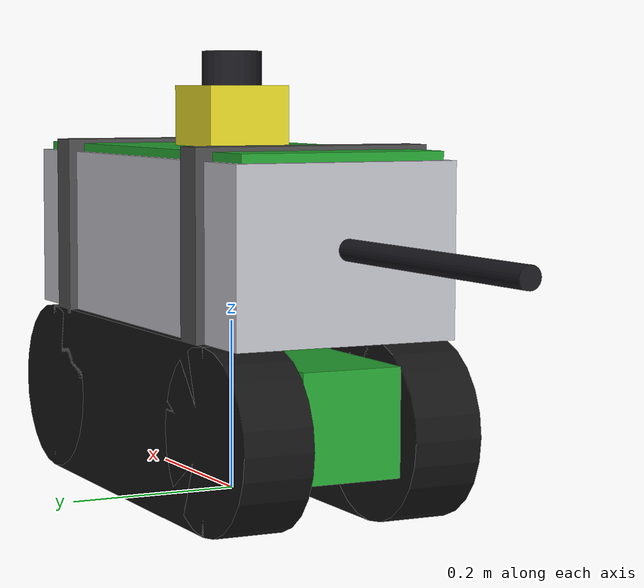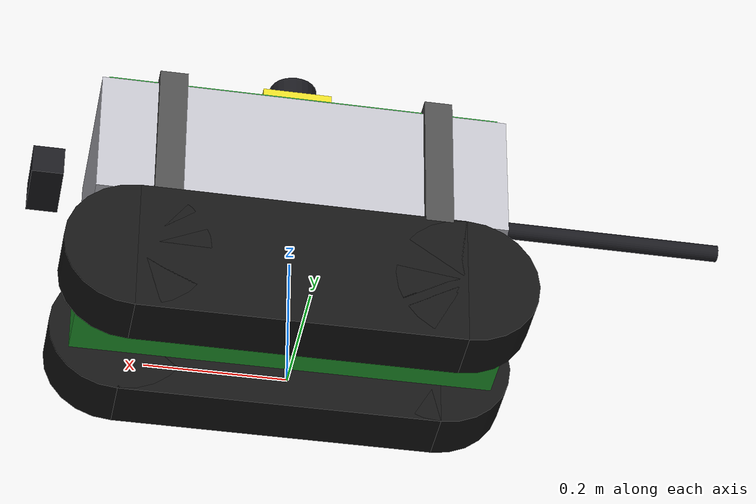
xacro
<?xml version="1.0"?>
<robot name="agos" xmlns:xacro="http://www.ros.org/wiki/xacro">

  <xacro:property name="chassis_length" value="0.6604"/>
  <xacro:property name="chassis_width"  value="0.2794"/>
  <xacro:property name="chassis_height" value="0.4064"/>
  <xacro:property name="chassis_mass"   value="42.0"/>

  <xacro:property name="track_radius"     value="0.1016"/>
  <xacro:property name="track_width"      value="0.08"/>
  <xacro:property name="wheel_mass"       value="1.2"/>
  <xacro:property name="track_separation" value="${chassis_width - track_width}"/>
  <xacro:property name="wheel_x_offset"   value="${chassis_length/2 - track_radius}"/>
  <xacro:property name="track_mu"         value="0.4"/>

  <!-- Body above the tracks, measured from the track top -->
  <xacro:property name="body_height"   value="${chassis_height/2}"/>
  <xacro:property name="lidar_mount_h" value="0.07"/>
  <xacro:property name="whip_length"   value="0.35"/>

  <xacro:include filename="$(find agos_sim)/urdf/agos_materials.xacro"/>
  <xacro:include filename="$(find agos_sim)/urdf/agos_tracks.xacro"/>
  <xacro:include filename="$(find agos_sim)/urdf/agos_sensors.xacro"/>

  <!-- ===================== base_footprint -> base_link -> chassis_link ===================== -->
  <link name="base_footprint"/>

  <joint name="base_footprint_joint" type="fixed">
    <parent link="base_footprint"/>
    <child link="base_link"/>
    <origin xyz="0 0 ${track_radius}" rpy="0 0 0"/>
  </joint>

  <link name="base_link"/>

  <!-- chassis_link origin = envelope center (ground + chassis_height/2 = track top) -->
  <joint name="base_link_to_chassis" type="fixed">
    <parent link="base_link"/>
    <child link="chassis_link"/>
    <origin xyz="0 0 ${chassis_height/2 - track_radius}" rpy="0 0 0"/>
  </joint>

  <link name="chassis_link">

    <!-- Green belly pan, between the tracks -->
    <visual>
      <origin xyz="0 0 ${0.12 - chassis_height/2}" rpy="0 0 0"/>
      <geometry>
        <box size="${chassis_length - 0.06} ${track_separation - track_width - 0.004} 0.12"/>
      </geometry>
      <material name="agos_green_body"/>
    </visual>

    <!-- Silver main body enclosure -->
    <visual>
      <origin xyz="0 0 ${(body_height - 0.01)/2}" rpy="0 0 0"/>
      <geometry>
        <box size="${chassis_length - 0.08} ${chassis_width - 0.02} ${body_height - 0.01}"/>
      </geometry>
      <material name="agos_silver_enclosure"/>
    </visual>

    <!-- Green top lid plate -->
    <visual>
      <origin xyz="0 0 ${body_height - 0.005}" rpy="0 0 0"/>
      <geometry>
        <box size="${chassis_length - 0.10} ${chassis_width - 0.04} 0.01"/>
      </geometry>
      <material name="agos_green_body"/>
    </visual>

    <!-- Front roll-cage arch -->
    <visual>
      <origin xyz="0.19 0 ${body_height/2}" rpy="0 0 0"/>
      <geometry>
        <box size="0.04 ${chassis_width} ${body_height + 0.01}"/>
      </geometry>
      <material name="agos_dark_grey_frame"/>
    </visual>

    <!-- Rear roll-cage arch -->
    <visual>
      <origin xyz="-0.19 0 ${body_height/2}" rpy="0 0 0"/>
      <geometry>
        <box size="0.04 ${chassis_width} ${body_height + 0.01}"/>
      </geometry>
      <material name="agos_dark_grey_frame"/>
    </visual>

    <!-- Rear whip pole / antenna (visual only) -->
    <visual>
      <origin xyz="${-chassis_length/2 - whip_length/2 + 0.05} 0 ${body_height/2}" rpy="0 ${pi/2} 0"/>
      <geometry>
        <cylinder radius="0.012" length="${whip_length}"/>
      </geometry>
      <material name="agos_sensor_dark"/>
    </visual>

    <!-- Yellow LiDAR pedestal (the LiDAR itself is in agos_sensors.xacro) -->
    <visual>
      <origin xyz="0 0 ${body_height + lidar_mount_h/2}" rpy="0 0 0"/>
      <geometry>
        <box size="0.10 0.10 ${lidar_mount_h}"/>
      </geometry>
      <material name="agos_lidar_yellow"/>
    </visual>

    <!-- Collision: upper body only. Tracks/wheels carry ground contact. -->
    <collision>
      <origin xyz="0 0 ${body_height/2}" rpy="0 0 0"/>
      <geometry>
        <box size="${chassis_length - 0.08} ${chassis_width} ${body_height}"/>
      </geometry>
    </collision>

    <inertial>
      <mass value="${chassis_mass}"/>
      <origin xyz="0 0 0" rpy="0 0 0"/>
      <inertia
        ixx="${(chassis_mass/12.0)*(chassis_width*chassis_width + chassis_height*chassis_height)}" ixy="0.0" ixz="0.0"
        iyy="${(chassis_mass/12.0)*(chassis_length*chassis_length + chassis_height*chassis_height)}" iyz="0.0"
        izz="${(chassis_mass/12.0)*(chassis_length*chassis_length + chassis_width*chassis_width)}"/>
    </inertial>
  </link>

  <!-- ===================== Tracks ===================== -->
  <xacro:agos_track side="left"  y_sign="1"/>
  <xacro:agos_track side="right" y_sign="-1"/>

  <!-- ===================== Sensors ===================== -->
  <xacro:agos_camera/>
  <xacro:agos_lidar/>
  <xacro:agos_imu/>

</robot>

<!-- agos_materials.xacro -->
<robot xmlns:xacro="http://www.ros.org/wiki/xacro">

  <material name="agos_chassis_grey">
    <color rgba="0.35 0.35 0.38 1.0"/>
  </material>

  <material name="agos_track_black">
    <color rgba="0.08 0.08 0.08 1.0"/>
  </material>

  <material name="agos_sensor_dark">
    <color rgba="0.10 0.10 0.12 1.0"/>
  </material>

</robot>

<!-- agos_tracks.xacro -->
<robot xmlns:xacro="http://www.ros.org/wiki/xacro">

  <!-- One driven road wheel. Collision = full track_radius cylinder (this is
       what touches the ground). Visual is slightly smaller so it hides inside
       the static belt. -->
  <xacro:macro name="agos_wheel" params="side y_sign pos x">
    <link name="${side}_wheel_${pos}">
      <visual>
        <origin xyz="0 0 0" rpy="${pi/2} 0 0"/>
        <geometry>
          <cylinder radius="${track_radius - 0.012}" length="${track_width - 0.01}"/>
        </geometry>
        <material name="agos_track_black"/>
      </visual>
      <collision>
        <origin xyz="0 0 0" rpy="${pi/2} 0 0"/>
        <geometry>
          <cylinder radius="${track_radius}" length="${track_width - 0.01}"/>
        </geometry>
      </collision>
      <inertial>
        <mass value="${wheel_mass}"/>
        <origin xyz="0 0 0" rpy="0 0 0"/>
        <inertia
          ixx="${(wheel_mass/12.0)*(3*track_radius*track_radius + track_width*track_width)}" ixy="0.0" ixz="0.0"
          iyy="${(wheel_mass/2.0)*track_radius*track_radius}" iyz="0.0"
          izz="${(wheel_mass/12.0)*(3*track_radius*track_radius + track_width*track_width)}"/>
      </inertial>
    </link>

    <joint name="${side}_wheel_${pos}_joint" type="continuous">
      <parent link="base_link"/>
      <child link="${side}_wheel_${pos}"/>
      <origin xyz="${x} ${y_sign * track_separation/2} 0" rpy="0 0 0"/>
      <axis xyz="0 1 0"/>
      <dynamics damping="0.1" friction="0.05"/>
    </joint>

    <gazebo reference="${side}_wheel_${pos}">
      <mu1>${track_mu}</mu1>
      <mu2>${track_mu}</mu2>
    </gazebo>
  </xacro:macro>

  <!-- One side: static belt (visual only, never rotates) + 3 driven wheels -->
  <xacro:macro name="agos_track" params="side y_sign">

    <link name="${side}_track_frame">
      <!-- center straight section -->
      <visual>
        <origin xyz="0 0 0" rpy="0 0 0"/>
        <geometry>
          <box size="${2*wheel_x_offset} ${track_width} ${2*track_radius}"/>
        </geometry>
        <material name="agos_track_black"/>
      </visual>
      <!-- front rounded end -->
      <visual>
        <origin xyz="${wheel_x_offset} 0 0" rpy="${pi/2} 0 0"/>
        <geometry>
          <cylinder radius="${track_radius}" length="${track_width}"/>
        </geometry>
        <material name="agos_track_black"/>
      </visual>
      <!-- rear rounded end -->
      <visual>
        <origin xyz="${-wheel_x_offset} 0 0" rpy="${pi/2} 0 0"/>
        <geometry>
          <cylinder radius="${track_radius}" length="${track_width}"/>
        </geometry>
        <material name="agos_track_black"/>
      </visual>
    </link>

    <joint name="${side}_track_frame_joint" type="fixed">
      <parent link="base_link"/>
      <child link="${side}_track_frame"/>
      <origin xyz="0 ${y_sign * track_separation/2} 0" rpy="0 0 0"/>
    </joint>

    <xacro:agos_wheel side="${side}" y_sign="${y_sign}" pos="front" x="${wheel_x_offset}"/>
    <xacro:agos_wheel side="${side}" y_sign="${y_sign}" pos="mid"   x="0"/>
    <xacro:agos_wheel side="${side}" y_sign="${y_sign}" pos="rear"  x="${-wheel_x_offset}"/>
  </xacro:macro>

  <!-- Differential drive over all 6 wheel joints. The plugin's own
       odom->base_footprint TF stays off /tf so the EKF remains the single
       publisher; raw odometry is on /odom. -->
  <gazebo>
    <plugin filename="gz-sim-diff-drive-system" name="gz::sim::systems::DiffDrive">
      <left_joint>left_wheel_front_joint</left_joint>
      <left_joint>left_wheel_mid_joint</left_joint>
      <left_joint>left_wheel_rear_joint</left_joint>
      <right_joint>right_wheel_front_joint</right_joint>
      <right_joint>right_wheel_mid_joint</right_joint>
      <right_joint>right_wheel_rear_joint</right_joint>
      <wheel_separation>${track_separation}</wheel_separation>
      <wheel_radius>${track_radius}</wheel_radius>
      <topic>cmd_vel</topic>
      <odom_topic>odom</odom_topic>
      <tf_topic>/model/agos/tf_odom_raw</tf_topic>
      <frame_id>odom</frame_id>
      <child_frame_id>base_footprint</child_frame_id>
      <odom_publish_frequency>50</odom_publish_frequency>
    </plugin>
    <plugin filename="gz-sim-joint-state-publisher-system" name="gz::sim::systems::JointStatePublisher">
      <topic>joint_states</topic>
    </plugin>
  </gazebo>

</robot>

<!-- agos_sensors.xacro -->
<robot xmlns:xacro="http://www.ros.org/wiki/xacro">

  <!-- ===================== Orbbec front-facing RGB-D camera ===================== -->
  <xacro:macro name="agos_camera">
    <xacro:property name="cam_size" value="0.045"/>
    <link name="camera_link">
      <visual>
        <geometry><box size="${cam_size} 0.09 ${cam_size}"/></geometry>
        <material name="agos_sensor_dark"/>
      </visual>
      <collision>
        <geometry><box size="${cam_size} 0.09 ${cam_size}"/></geometry>
      </collision>
      <inertial>
        <mass value="0.12"/>
        <origin xyz="0 0 0" rpy="0 0 0"/>
        <inertia ixx="0.0002" ixy="0.0" ixz="0.0" iyy="0.0002" iyz="0.0" izz="0.0002"/>
      </inertial>
    </link>

    <joint name="camera_joint" type="fixed">
      <parent link="chassis_link"/>
      <child link="camera_link"/>
      <origin xyz="${chassis_length/2 + cam_size/2} 0 ${chassis_height*0.25}" rpy="0 0 0"/>
    </joint>

    <!-- Optical frame: images/pointclouds must be stamped z-forward/x-right/y-down -->
    <link name="camera_optical_frame"/>
    <joint name="camera_optical_joint" type="fixed">
      <parent link="camera_link"/>
      <child link="camera_optical_frame"/>
      <origin xyz="0 0 0" rpy="${-pi/2} 0 ${-pi/2}"/>
    </joint>

    <!-- Publishes (after ros_gz_bridge remap in config/bridge.yaml):
         /camera/image_raw and /camera/depth/points -->
    <gazebo reference="camera_link">
      <sensor name="orbbec_rgbd_camera" type="rgbd_camera">
        <always_on>true</always_on>
        <update_rate>15</update_rate>
        <visualize>false</visualize>
        <topic>camera</topic>
        <gz_frame_id>camera_optical_frame</gz_frame_id>
        <camera>
          <horizontal_fov>1.204</horizontal_fov>
          <image>
            <width>640</width>
            <height>480</height>
            <format>R8G8B8</format>
          </image>
          <clip>
            <near>0.1</near>
            <far>8.0</far>
          </clip>
        </camera>
      </sensor>
    </gazebo>
  </xacro:macro>

  <!-- ===================== Okdo 2D LiDAR ===================== -->
  <xacro:macro name="agos_lidar">
    <xacro:property name="lidar_radius" value="0.035"/>
    <xacro:property name="lidar_height" value="0.04"/>
    <link name="lidar_link">
      <visual>
        <geometry><cylinder radius="${lidar_radius}" length="${lidar_height}"/></geometry>
        <material name="agos_sensor_dark"/>
      </visual>
      <collision>
        <geometry><cylinder radius="${lidar_radius}" length="${lidar_height}"/></geometry>
      </collision>
      <inertial>
        <mass value="0.15"/>
        <origin xyz="0 0 0" rpy="0 0 0"/>
        <inertia ixx="0.0001" ixy="0.0" ixz="0.0" iyy="0.0001" iyz="0.0" izz="0.0001"/>
      </inertial>
    </link>

    <!-- Sits on the yellow pedestal defined in agos.urdf.xacro (lidar_mount_h) -->
    <joint name="lidar_joint" type="fixed">
      <parent link="chassis_link"/>
      <child link="lidar_link"/>
      <origin xyz="0 0 ${chassis_height/2 + lidar_mount_h + lidar_height/2}" rpy="0 0 0"/>
    </joint>

    <gazebo reference="lidar_link">
      <sensor name="okdo_2d_lidar" type="gpu_lidar">
        <always_on>true</always_on>
        <update_rate>10</update_rate>
        <topic>scan</topic>
        <gz_frame_id>lidar_link</gz_frame_id>
        <lidar>
          <scan>
            <horizontal>
              <samples>360</samples>
              <min_angle>-3.14159</min_angle>
              <max_angle>3.14159</max_angle>
            </horizontal>
          </scan>
          <range>
            <min>0.12</min>
            <max>10.0</max>
            <resolution>0.01</resolution>
          </range>
        </lidar>
      </sensor>
    </gazebo>
  </xacro:macro>

  <!-- ===================== 9-DOF IMU ===================== -->
  <xacro:macro name="agos_imu">
    <link name="imu_link">
      <visual>
        <geometry><box size="0.03 0.03 0.01"/></geometry>
        <material name="agos_sensor_dark"/>
      </visual>
      <collision>
        <geometry><box size="0.03 0.03 0.01"/></geometry>
      </collision>
      <inertial>
        <mass value="0.05"/>
        <origin xyz="0 0 0" rpy="0 0 0"/>
        <inertia ixx="0.00002" ixy="0.0" ixz="0.0" iyy="0.00002" iyz="0.0" izz="0.00002"/>
      </inertial>
    </link>

    <joint name="imu_joint" type="fixed">
      <parent link="chassis_link"/>
      <child link="imu_link"/>
      <origin xyz="0 0 0.01" rpy="0 0 0"/>
    </joint>

    <!-- Requires the gz-sim-imu-system world plugin (added in worlds/pvc_pipe.sdf)
         or this topic stays silent even though the sensor is declared here. -->
    <gazebo reference="imu_link">
      <sensor name="agos_imu" type="imu">
        <always_on>true</always_on>
        <update_rate>100</update_rate>
        <topic>imu/data</topic>
        <gz_frame_id>imu_link</gz_frame_id>
      </sensor>
    </gazebo>
  </xacro:macro>

</robot>
